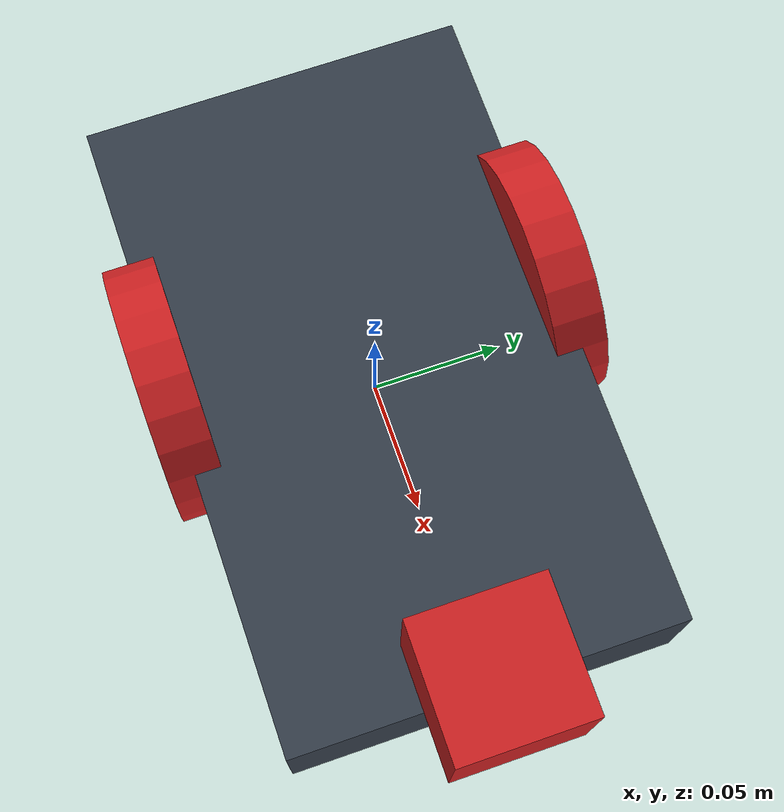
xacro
<?xml version="1.0"?>
<robot xmlns:xacro="http://www.ros.org/wiki/xacro" name="robot_xacro">
<xacro:include filename="$(find exp_assignment3)/urdf/robot.gazebo"/>

	<xacro:property name="length_wheel" value="0.02" />
	<xacro:property name="radius_wheel" value="0.05" />

	<xacro:macro name="default_inertial" params="mass">
               <inertial>
                       <mass value="${mass}" />
                       <origin rpy="0 1.5707 1.5707" xyz="0 0 0"/>
                       <inertia ixx="0.000526666666667" ixy="0" ixz="0" iyy="0.000526666666667" iyz="0" izz="0.001"/>
               </inertial>
	</xacro:macro>

    <xacro:macro name="wheel_geometry">
		<geometry>
       			<cylinder length="${length_wheel}" radius="${radius_wheel}"/>
     	</geometry>
	</xacro:macro>

  <material name="black">
    <color rgba="0.0 0.0 0.0 1.0"/>
  </material>
  <material name="blue">
    <color rgba="0.203125 0.23828125 0.28515625 1.0"/>
  </material>
  <material name="green">
    <color rgba="0.0 0.8 0.0 1.0"/>
  </material>
  <material name="grey">
    <color rgba="0.2 0.2 0.2 1.0"/>
  </material>
  <material name="orange">
    <color rgba="1.0 0.423529411765 0.0392156862745 1.0"/>
  </material>
  <material name="brown">
    <color rgba="0.870588235294 0.811764705882 0.764705882353 1.0"/>
  </material>
  <material name="red">
    <color rgba="0.80078125 0.12890625 0.1328125 1.0"/>
  </material>
  <material name="white">
    <color rgba="1.0 1.0 1.0 1.0"/>
  </material>

	  <link name="link_chassis">
    <!-- pose and inertial -->
    <pose>0 0 0.1 0 0 0</pose>
    <inertial>
      <mass value="5"/>
      <origin rpy="0 0 0" xyz="0 0 0.1"/>
      <inertia ixx="0.0395416666667" ixy="0" ixz="0" iyy="0.106208333333" iyz="0" izz="0.106208333333"/>
    </inertial>
    <!-- body -->
    <collision name="collision_chassis">
      <geometry>
        <box size="0.25 0.15 0.05"/>
      </geometry>
    </collision>
    <visual>
      <origin rpy="0 0 0" xyz="0 0 0"/>
      <geometry>
        <box size="0.25 0.15 0.05"/>
      </geometry>
      <material name="blue"/>
    </visual>
    <!-- caster front -->
    <collision name="caster_front_collision">
      <origin rpy=" 0 0 0" xyz="0.175 0 -0.025"/>
      <geometry>
        <sphere radius="0.025"/>
      </geometry>
    </collision>
    <visual name="caster_front_visual">
      <origin rpy=" 0 0 0" xyz="0.1 0 -0.025"/>
      <geometry>
        <sphere radius="0.025"/>
      </geometry>
    </visual>
  </link>
  <!-- Wheels -->
   <link name="link_right_wheel">
    <xacro:default_inertial mass="0.2"/>
    <collision name="link_right_wheel_collision">
      <origin rpy="0 1.5707 1.5707" xyz="0 0 0"/>
      <xacro:wheel_geometry />
    </collision>
    <visual name="link_right_wheel_visual">
      <origin rpy="0 1.5707 1.5707" xyz="0 0 0"/>
      <xacro:wheel_geometry />
      <material name="red"/>
    </visual>
  </link>

   <link name="link_left_wheel">
    <xacro:default_inertial mass="0.2"/>
    <collision name="link_left_wheel_collision">
      <origin rpy="0 1.5707 1.5707" xyz="0 0 0"/>
      <xacro:wheel_geometry />
    </collision>
    <visual name="link_left_wheel_visual">
      <origin rpy="0 1.5707 1.5707" xyz="0 0 0"/>
      <xacro:wheel_geometry />
      <material name="red"/>
    </visual>
  </link>
  <joint name="joint_right_wheel" type="continuous">
    <origin rpy="0 0 0" xyz="-0.025 0.075 0"/>
    <child link="link_right_wheel"/>
    <parent link="link_chassis"/>
    <axis rpy="0 0 0" xyz="0 1 0"/>
    <limit effort="10000" velocity="1000"/>
    <joint_properties damping="1.0" friction="1.0"/>
  </joint>

  <joint name="joint_left_wheel" type="continuous">
    <origin rpy="0 0 0" xyz="-0.025 -0.075 0"/>
    <child link="link_left_wheel"/>
    <parent link="link_chassis"/>
    <axis rpy="0 0 0" xyz="0 1 0"/>
    <limit effort="10000" velocity="1000"/>
    <joint_properties damping="1.0" friction="1.0"/>
  </joint>

  <!-- hokuyo laser link -->
  <link name="hokuyo_link">
	    <collision>
	      <origin xyz="-0.02 0 -0.00125" rpy="0 0 0"/>
	      <geometry>
		<box size="0.025 0.025 0.025"/>
	      </geometry>
	    </collision>
	    <visual>
	      <origin xyz="-0.02 0 -0.00125" rpy="0 0 0"/>
	      <geometry>
		<box size="0.025 0.025 0.025"/>
	      </geometry>
	      <material name="red">
		<color rgba="1 0 0 1"/>
	      </material>
	    </visual>
	    <inertial>
	      <mass value="1e-5" />
	      <origin xyz="0 0 0" rpy="0 0 0"/>
	      <inertia ixx="1e-6" ixy="0" ixz="0" iyy="1e-6" iyz="0" izz="1e-6" />
	    </inertial>
  </link>
  <!-- hokuyo laser joint-->
  <joint name="hokuyo_joint" type="fixed">
	    <axis xyz="0 1 0" />
	    <origin xyz="0.14 0 0.025" rpy="0 0 0"/>
	    <parent link="link_chassis"/>
	    <child link="hokuyo_link"/>
	 </joint>

  <!-- camera link-->
  <link name="camera_link">
	    <collision>
	      <origin xyz="-0.025 0 0.05" rpy="0 0 0"/>
	      <geometry>
		      <box size="0.05 0.05 0.05"/>
	      </geometry>
	    </collision>
	    <visual>
	      <origin xyz="-0.025 0 0.05" rpy="0 0 0"/>
	      <geometry>
		      <box size="0.05 0.05 0.05"/>
	      </geometry>
	      <material name="red"/>
	    </visual>
	    <inertial>
	      <mass value="1e-5" />
	      <origin xyz="0 0 0" rpy="0 0 0"/>
	      <inertia ixx="1e-6" ixy="0" ixz="0" iyy="1e-6" iyz="0" izz="1e-6" />
	    </inertial>
  </link>
  <!-- camera joint-->
  <joint name="camera_joint" type="fixed">
	    <axis xyz="0 1 0" />
	    <origin xyz="0.15 0 0.0" rpy="0 0 0"/>
      <child link="camera_link"/>
	    <parent link="link_chassis"/>
	</joint>

</robot>
